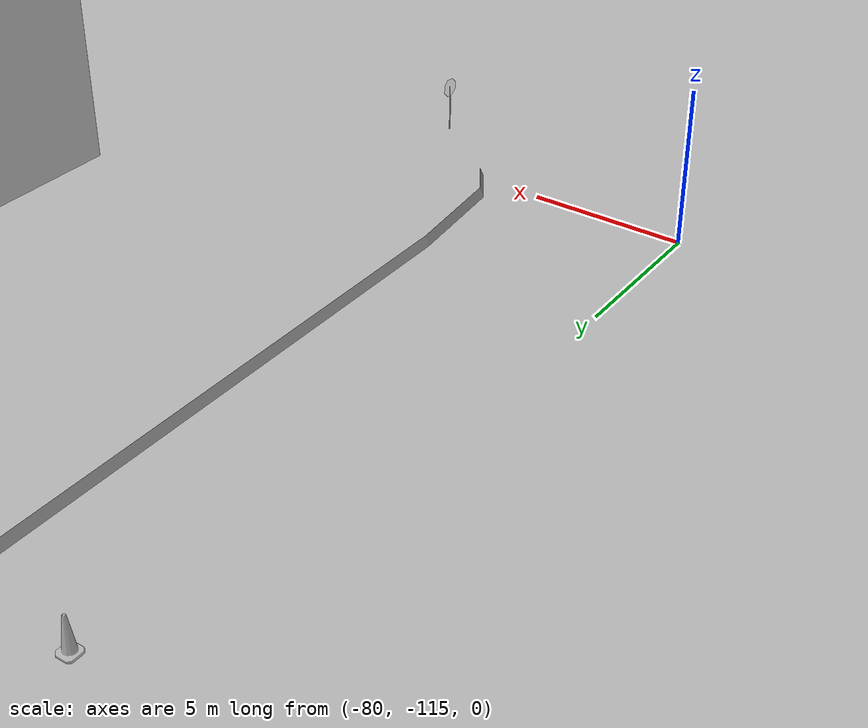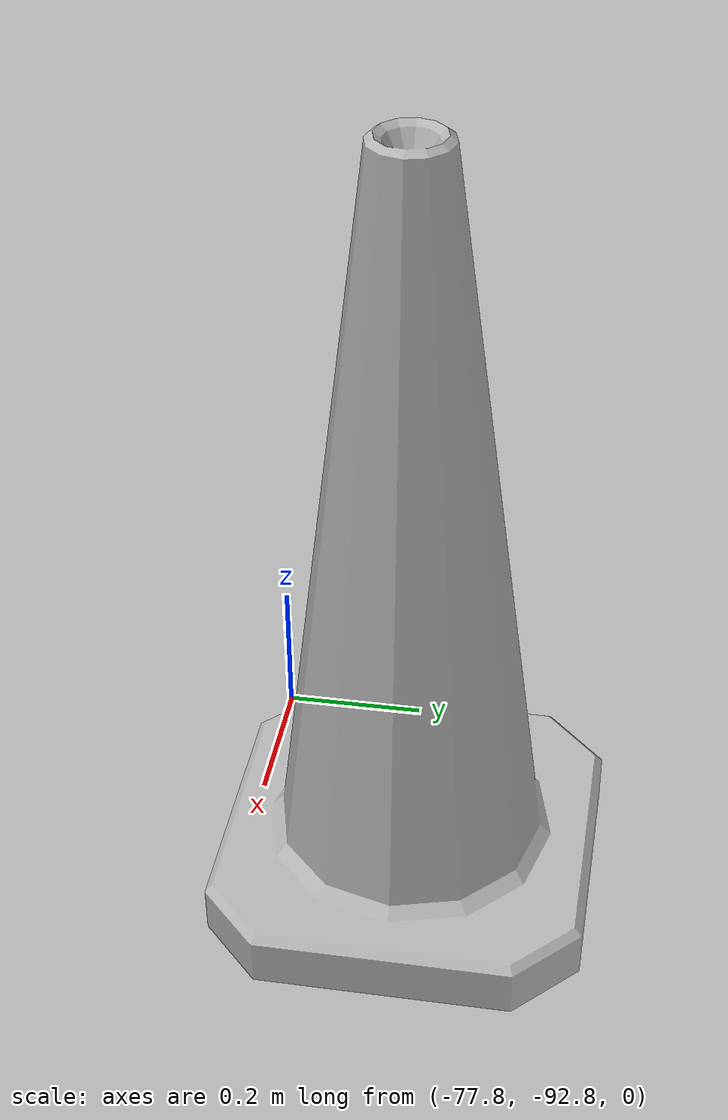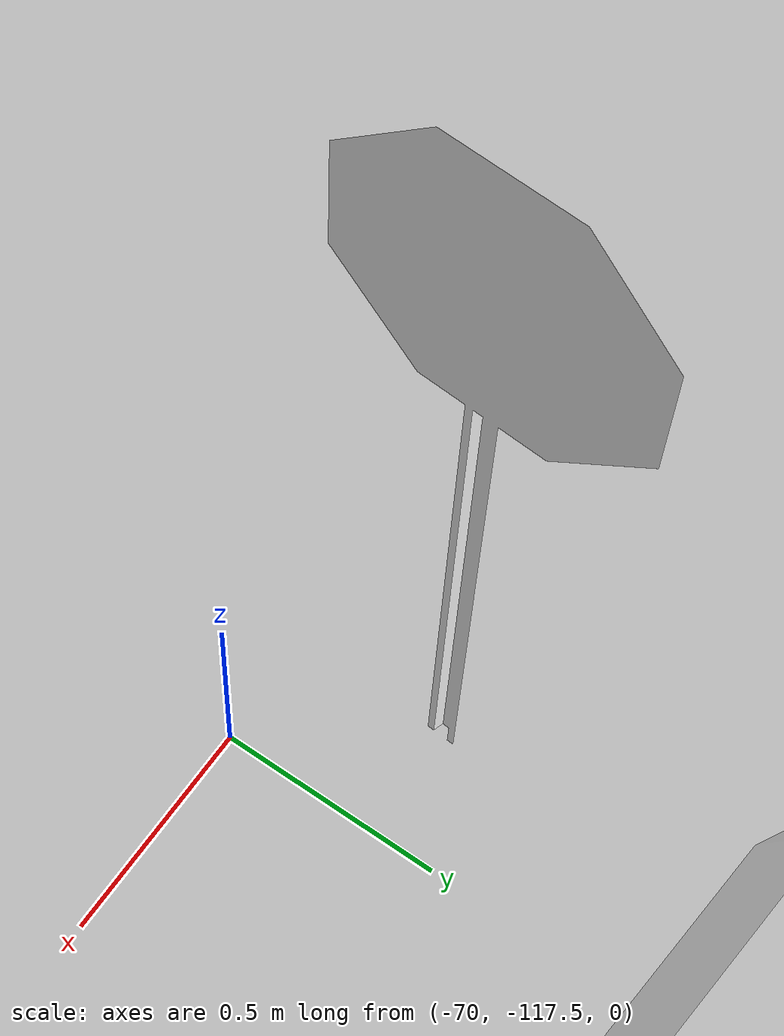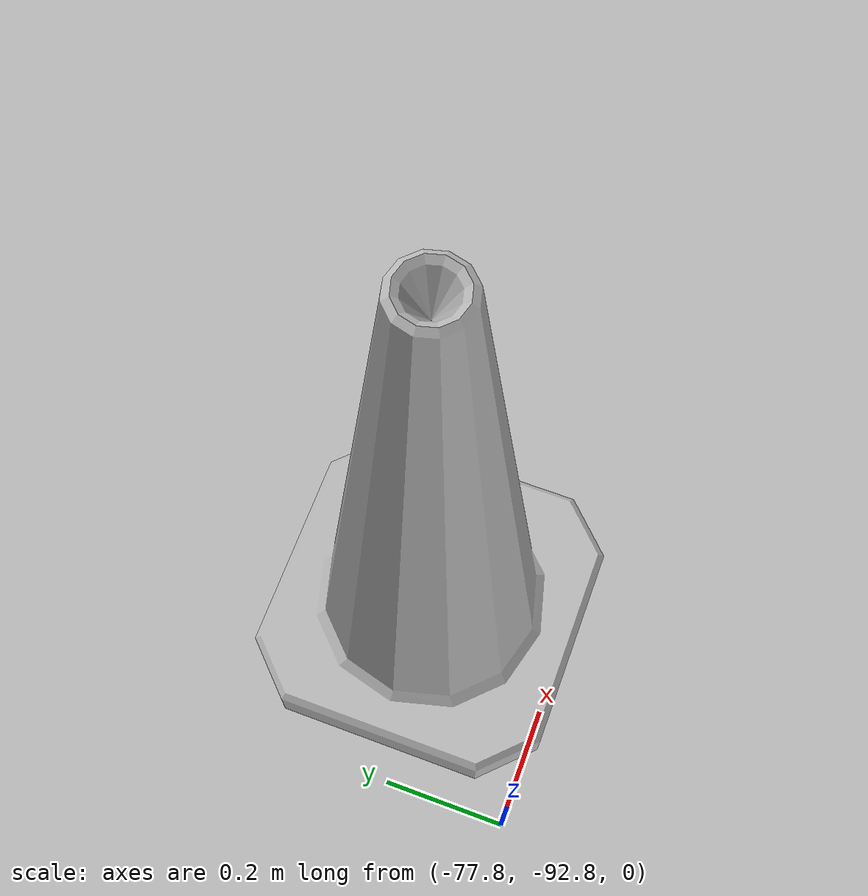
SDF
<sdf version="1.6">
 <world name="default">
  <light name="sun" type="directional">
   <pose>0 0 10 0 -0 0</pose>
   <diffuse>0.8 0.8 0.8 1</diffuse>
   <specular>0.2 0.2 0.2 1</specular>
   <attenuation>
    <range>1000</range>
    <constant>0.9</constant>
    <linear>0.01</linear>
    <quadratic>0.001</quadratic>
   </attenuation>
   <direction>-0.5 0.1 -0.9</direction>
  </light>
  <gravity>0 0 -9.8</gravity>
  <magnetic_field>6e-06 2.3e-05 -4.2e-05</magnetic_field>
  <atmosphere type="adiabatic"/>
  <physics name="default_physics" default="0" type="ode">
   <max_step_size>0.001</max_step_size>
   <real_time_factor>1</real_time_factor>
   <real_time_update_rate>1000</real_time_update_rate>
  </physics>
  <scene><ambient>0.4 0.4 0.4 1</ambient><background>0.7 0.7 0.7 1</background><shadows>1</shadows></scene>
  <spherical_coordinates>
   <surface_model>EARTH_WGS84</surface_model>
   <latitude_deg>0</latitude_deg>
   <longitude_deg>0</longitude_deg>
   <elevation>0</elevation>
   <heading_deg>0</heading_deg>
  </spherical_coordinates>
  <model name="mcity">
   <static>1</static>
   <link name="link">
    <collision name="collision">
     <geometry><mesh><scale>0.254 0.254 0.254</scale><uri>model://mcity/meshes/mcity.obj</uri></mesh></geometry>
    </collision>
    <visual name="visual">
     <geometry><mesh><scale>0.254 0.254 0.254</scale><uri>model://mcity/meshes/mcity.obj</uri></mesh></geometry>
    </visual>
   </link>
  </model>
  <model name="Stop Sign">
   <static>1</static>
   <link name="link">
    <collision name="collision">
     <geometry><mesh><uri>model://stop_sign/meshes/stop_sign.dae</uri></mesh></geometry>
    </collision>
    <visual name="visual">
     <geometry><mesh><uri>model://stop_sign/meshes/stop_sign.dae</uri></mesh></geometry>
     <material>
      <script>
       <uri>model://stop_sign/materials/scripts</uri>
       <uri>model://stop_sign/materials/textures</uri>
       <name>StopSign/Diffuse</name>
      </script>
     </material>
    </visual>
   </link>
   <pose>-70.1817 -117.106 0.223176 0 -0 1.5</pose>
  </model>
  <model name="Construction Cone">
   <link name="link">
    <collision name="collision">
     <geometry>
      <mesh><scale>10 10 10</scale><uri>model://construction_cone/meshes/construction_cone.dae</uri></mesh>
     </geometry>
    </collision>
    <visual name="visual">
     <geometry>
      <mesh><scale>10 10 10</scale><uri>model://construction_cone/meshes/construction_cone.dae</uri></mesh>
     </geometry>
    </visual>
    <inertial>
     <inertia><ixx>1</ixx><ixy>0</ixy><ixz>0</ixz><iyy>1</iyy><iyz>0</iyz><izz>1</izz></inertia>
     <mass>1</mass>
    </inertial>
   </link>
   <pose>-77.4916 -92.5634 -9e-06 0 2e-06 0</pose>
  </model>
 </world>
</sdf>
